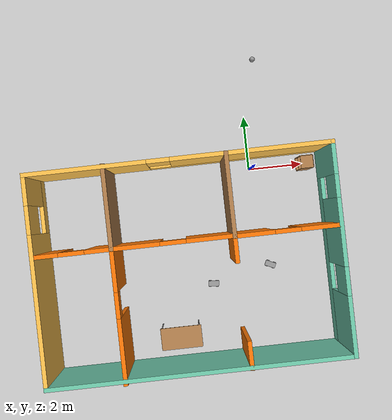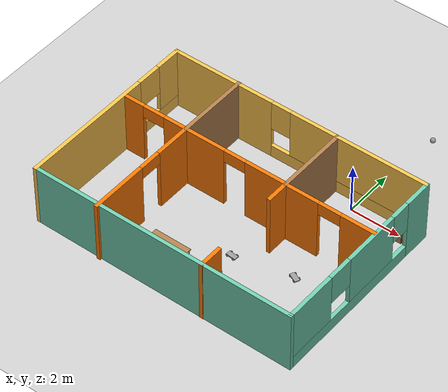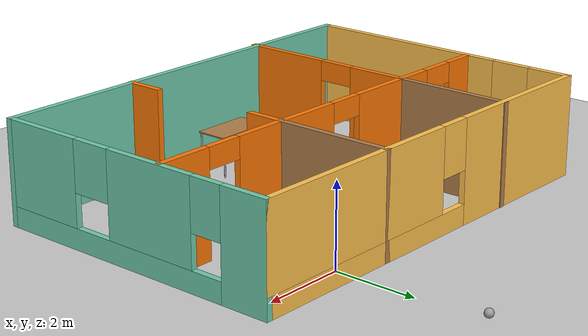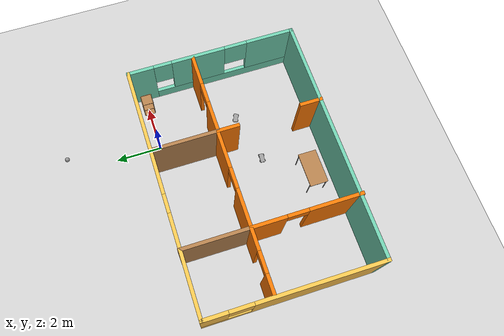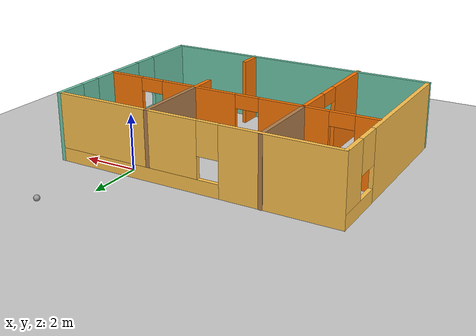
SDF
<sdf version="1.6">
 <world name="default">
  <plugin name="hello" filename="libhello.so"/>
  <light name="sun" type="directional">
   <pose>0 0 10 0 -0 0</pose>
   <diffuse>0.8 0.8 0.8 1</diffuse>
   <specular>0.2 0.2 0.2 1</specular>
   <attenuation>
    <range>1000</range>
    <constant>0.9</constant>
    <linear>0.01</linear>
    <quadratic>0.001</quadratic>
   </attenuation>
   <direction>-0.5 0.1 -0.9</direction>
  </light>
  <model name="ground_plane">
   <static>1</static>
   <link name="link">
    <collision name="collision">
     <geometry><plane><normal>0 0 1</normal><size>100 100</size></plane></geometry>
     <surface>
      <contact><collide_bitmask>65535</collide_bitmask></contact>
      <friction><ode><mu>100</mu><mu2>50</mu2></ode></friction>
     </surface>
    </collision>
    <visual name="visual">
     <cast_shadows>0</cast_shadows>
     <geometry><plane><normal>0 0 1</normal><size>100 100</size></plane></geometry>
     <material>
      <script><uri>file://media/materials/scripts/gazebo.material</uri><name>Gazebo/Grey</name></script>
     </material>
    </visual>
   </link>
  </model>
  <gravity>0 0 -9.8</gravity>
  <magnetic_field>6e-06 2.3e-05 -4.2e-05</magnetic_field>
  <atmosphere type="adiabatic"/>
  <physics name="default_physics" default="0" type="ode">
   <max_step_size>0.001</max_step_size>
   <real_time_factor>1</real_time_factor>
   <real_time_update_rate>1000</real_time_update_rate>
  </physics>
  <scene><ambient>0.4 0.4 0.4 1</ambient><background>0.7 0.7 0.7 1</background><shadows>1</shadows></scene>
  <spherical_coordinates>
   <surface_model>EARTH_WGS84</surface_model>
   <latitude_deg>0</latitude_deg>
   <longitude_deg>0</longitude_deg>
   <elevation>0</elevation>
   <heading_deg>0</heading_deg>
  </spherical_coordinates>
  <model name="mobile_robot">
   <link name="link_0">
    <inertial>
     <mass>1</mass>
     <inertia>
      <ixx>0.166667</ixx>
      <ixy>0</ixy>
      <ixz>0</ixz>
      <iyy>0.166667</iyy>
      <iyz>0</iyz>
      <izz>0.166667</izz>
     </inertia>
    </inertial>
    <visual name="visual">
     <geometry><box><size>0.4 0.2 0.04</size></box></geometry>
     <material>
      <lighting>1</lighting>
      <script><uri>file://media/materials/scripts/gazebo.material</uri><name>Gazebo/Grey</name></script>
      <shader type="pixel"><normal_map>__default__</normal_map></shader>
      <ambient>0.3 0.3 0.3 1</ambient>
      <diffuse>0.7 0.7 0.7 1</diffuse>
      <specular>0.01 0.01 0.01 1</specular>
      <emissive>0 0 0 1</emissive>
     </material>
    </visual>
    <collision name="collision">
     <geometry><box><size>0.4 0.2 0.04</size></box></geometry>
     <surface>
      <friction>
       <ode><mu>1</mu><mu2>1</mu2><fdir1>0 0 0</fdir1><slip1>0</slip1><slip2>0</slip2></ode>
       <torsional>
        <coefficient>1</coefficient>
        <patch_radius>0</patch_radius>
        <surface_radius>0</surface_radius>
        <use_patch_radius>1</use_patch_radius>
        <ode><slip>0</slip></ode>
       </torsional>
      </friction>
      <bounce><restitution_coefficient>0</restitution_coefficient><threshold>1e+06</threshold></bounce>
      <contact>
       <collide_without_contact>0</collide_without_contact>
       <collide_without_contact_bitmask>1</collide_without_contact_bitmask>
       <collide_bitmask>1</collide_bitmask>
       <ode>
        <soft_cfm>0</soft_cfm>
        <soft_erp>0.2</soft_erp>
        <kp>1e+13</kp>
        <kd>1</kd>
        <max_vel>0.01</max_vel>
        <min_depth>0</min_depth>
       </ode>
       <bullet>
        <split_impulse>1</split_impulse>
        <split_impulse_penetration_threshold>-0.01</split_impulse_penetration_threshold>
        <soft_cfm>0</soft_cfm>
        <soft_erp>0.2</soft_erp>
        <kp>1e+13</kp>
        <kd>1</kd>
       </bullet>
      </contact>
     </surface>
    </collision>
   </link>
   <link name="link_1">
    <pose>0.13 0.11 0 1.5707 -0 0</pose>
    <inertial>
     <mass>1</mass>
     <inertia><ixx>0.145833</ixx><ixy>0</ixy><ixz>0</ixz><iyy>0.145833</iyy><iyz>0</iyz><izz>0.125</izz></inertia>
    </inertial>
    <visual name="visual">
     <geometry><cylinder><radius>0.05</radius><length>0.02</length></cylinder></geometry>
     <material>
      <lighting>1</lighting>
      <script><uri>file://media/materials/scripts/gazebo.material</uri><name>Gazebo/Grey</name></script>
      <shader type="pixel"><normal_map>__default__</normal_map></shader>
      <ambient>0.3 0.3 0.3 1</ambient>
      <diffuse>0.7 0.7 0.7 1</diffuse>
      <specular>0.01 0.01 0.01 1</specular>
      <emissive>0 0 0 1</emissive>
     </material>
    </visual>
    <collision name="collision">
     <geometry><cylinder><radius>0.05</radius><length>0.02</length></cylinder></geometry>
     <surface>
      <friction>
       <ode><mu>1</mu><mu2>1</mu2><fdir1>0 0 0</fdir1><slip1>0</slip1><slip2>0</slip2></ode>
       <torsional>
        <coefficient>1</coefficient>
        <patch_radius>0</patch_radius>
        <surface_radius>0</surface_radius>
        <use_patch_radius>1</use_patch_radius>
        <ode><slip>0</slip></ode>
       </torsional>
      </friction>
      <bounce><restitution_coefficient>0</restitution_coefficient><threshold>1e+06</threshold></bounce>
      <contact>
       <collide_without_contact>0</collide_without_contact>
       <collide_without_contact_bitmask>1</collide_without_contact_bitmask>
       <collide_bitmask>1</collide_bitmask>
       <ode>
        <soft_cfm>0</soft_cfm>
        <soft_erp>0.2</soft_erp>
        <kp>1e+13</kp>
        <kd>1</kd>
        <max_vel>0.01</max_vel>
        <min_depth>0</min_depth>
       </ode>
       <bullet>
        <split_impulse>1</split_impulse>
        <split_impulse_penetration_threshold>-0.01</split_impulse_penetration_threshold>
        <soft_cfm>0</soft_cfm>
        <soft_erp>0.2</soft_erp>
        <kp>1e+13</kp>
        <kd>1</kd>
       </bullet>
      </contact>
     </surface>
    </collision>
   </link>
   <link name="link_1_clone">
    <pose>-0.13 0.11 0 1.5707 -0 0</pose>
    <inertial>
     <mass>1</mass>
     <inertia><ixx>0.145833</ixx><ixy>0</ixy><ixz>0</ixz><iyy>0.145833</iyy><iyz>0</iyz><izz>0.125</izz></inertia>
    </inertial>
    <visual name="visual">
     <geometry><cylinder><radius>0.05</radius><length>0.02</length></cylinder></geometry>
     <material>
      <lighting>1</lighting>
      <script><uri>file://media/materials/scripts/gazebo.material</uri><name>Gazebo/Grey</name></script>
      <shader type="pixel"><normal_map>__default__</normal_map></shader>
      <ambient>0.3 0.3 0.3 1</ambient>
      <diffuse>0.7 0.7 0.7 1</diffuse>
      <specular>0.01 0.01 0.01 1</specular>
      <emissive>0 0 0 1</emissive>
     </material>
    </visual>
    <collision name="collision">
     <geometry><cylinder><radius>0.05</radius><length>0.02</length></cylinder></geometry>
     <surface>
      <friction>
       <ode><mu>1</mu><mu2>1</mu2><fdir1>0 0 0</fdir1><slip1>0</slip1><slip2>0</slip2></ode>
       <torsional>
        <coefficient>1</coefficient>
        <patch_radius>0</patch_radius>
        <surface_radius>0</surface_radius>
        <use_patch_radius>1</use_patch_radius>
        <ode><slip>0</slip></ode>
       </torsional>
      </friction>
      <bounce><restitution_coefficient>0</restitution_coefficient><threshold>1e+06</threshold></bounce>
      <contact>
       <collide_without_contact>0</collide_without_contact>
       <collide_without_contact_bitmask>1</collide_without_contact_bitmask>
       <collide_bitmask>1</collide_bitmask>
       <ode>
        <soft_cfm>0</soft_cfm>
        <soft_erp>0.2</soft_erp>
        <kp>1e+13</kp>
        <kd>1</kd>
        <max_vel>0.01</max_vel>
        <min_depth>0</min_depth>
       </ode>
       <bullet>
        <split_impulse>1</split_impulse>
        <split_impulse_penetration_threshold>-0.01</split_impulse_penetration_threshold>
        <soft_cfm>0</soft_cfm>
        <soft_erp>0.2</soft_erp>
        <kp>1e+13</kp>
        <kd>1</kd>
       </bullet>
      </contact>
     </surface>
    </collision>
   </link>
   <link name="link_1_clone_clone">
    <pose>0.13 -0.11 0 1.5707 -0 0</pose>
    <inertial>
     <mass>1</mass>
     <inertia><ixx>0.145833</ixx><ixy>0</ixy><ixz>0</ixz><iyy>0.145833</iyy><iyz>0</iyz><izz>0.125</izz></inertia>
    </inertial>
    <visual name="visual">
     <geometry><cylinder><radius>0.05</radius><length>0.02</length></cylinder></geometry>
     <material>
      <lighting>1</lighting>
      <script><uri>file://media/materials/scripts/gazebo.material</uri><name>Gazebo/Grey</name></script>
      <shader type="pixel"><normal_map>__default__</normal_map></shader>
      <ambient>0.3 0.3 0.3 1</ambient>
      <diffuse>0.7 0.7 0.7 1</diffuse>
      <specular>0.01 0.01 0.01 1</specular>
      <emissive>0 0 0 1</emissive>
     </material>
    </visual>
    <collision name="collision">
     <geometry><cylinder><radius>0.05</radius><length>0.02</length></cylinder></geometry>
     <surface>
      <friction>
       <ode><mu>1</mu><mu2>1</mu2><fdir1>0 0 0</fdir1><slip1>0</slip1><slip2>0</slip2></ode>
       <torsional>
        <coefficient>1</coefficient>
        <patch_radius>0</patch_radius>
        <surface_radius>0</surface_radius>
        <use_patch_radius>1</use_patch_radius>
        <ode><slip>0</slip></ode>
       </torsional>
      </friction>
      <bounce><restitution_coefficient>0</restitution_coefficient><threshold>1e+06</threshold></bounce>
      <contact>
       <collide_without_contact>0</collide_without_contact>
       <collide_without_contact_bitmask>1</collide_without_contact_bitmask>
       <collide_bitmask>1</collide_bitmask>
       <ode>
        <soft_cfm>0</soft_cfm>
        <soft_erp>0.2</soft_erp>
        <kp>1e+13</kp>
        <kd>1</kd>
        <max_vel>0.01</max_vel>
        <min_depth>0</min_depth>
       </ode>
       <bullet>
        <split_impulse>1</split_impulse>
        <split_impulse_penetration_threshold>-0.01</split_impulse_penetration_threshold>
        <soft_cfm>0</soft_cfm>
        <soft_erp>0.2</soft_erp>
        <kp>1e+13</kp>
        <kd>1</kd>
       </bullet>
      </contact>
     </surface>
    </collision>
   </link>
   <link name="link_1_clone_clone_0">
    <pose>-0.13 -0.11 0 1.5705 -0 0</pose>
    <inertial>
     <mass>1</mass>
     <inertia><ixx>0.145833</ixx><ixy>0</ixy><ixz>0</ixz><iyy>0.145833</iyy><iyz>0</iyz><izz>0.125</izz></inertia>
    </inertial>
    <visual name="visual">
     <geometry><cylinder><radius>0.05</radius><length>0.02</length></cylinder></geometry>
     <material>
      <lighting>1</lighting>
      <script><uri>file://media/materials/scripts/gazebo.material</uri><name>Gazebo/Grey</name></script>
      <shader type="pixel"><normal_map>__default__</normal_map></shader>
      <ambient>0.3 0.3 0.3 1</ambient>
      <diffuse>0.7 0.7 0.7 1</diffuse>
      <specular>0.01 0.01 0.01 1</specular>
      <emissive>0 0 0 1</emissive>
     </material>
    </visual>
    <collision name="collision">
     <geometry><cylinder><radius>0.05</radius><length>0.02</length></cylinder></geometry>
     <surface>
      <friction>
       <ode><mu>1</mu><mu2>1</mu2><fdir1>0 0 0</fdir1><slip1>0</slip1><slip2>0</slip2></ode>
       <torsional>
        <coefficient>1</coefficient>
        <patch_radius>0</patch_radius>
        <surface_radius>0</surface_radius>
        <use_patch_radius>1</use_patch_radius>
        <ode><slip>0</slip></ode>
       </torsional>
      </friction>
      <bounce><restitution_coefficient>0</restitution_coefficient><threshold>1e+06</threshold></bounce>
      <contact>
       <collide_without_contact>0</collide_without_contact>
       <collide_without_contact_bitmask>1</collide_without_contact_bitmask>
       <collide_bitmask>1</collide_bitmask>
       <ode>
        <soft_cfm>0</soft_cfm>
        <soft_erp>0.2</soft_erp>
        <kp>1e+13</kp>
        <kd>1</kd>
        <max_vel>0.01</max_vel>
        <min_depth>0</min_depth>
       </ode>
       <bullet>
        <split_impulse>1</split_impulse>
        <split_impulse_penetration_threshold>-0.01</split_impulse_penetration_threshold>
        <soft_cfm>0</soft_cfm>
        <soft_erp>0.2</soft_erp>
        <kp>1e+13</kp>
        <kd>1</kd>
       </bullet>
      </contact>
     </surface>
    </collision>
   </link>
   <joint name="link_0_JOINT_2" type="revolute">
    <parent>link_0</parent>
    <child>link_1</child>
    <axis>
     <xyz>0 0 -1</xyz>
     <use_parent_model_frame>0</use_parent_model_frame>
     <limit>
      <lower>-1.79769e+308</lower>
      <upper>1.79769e+308</upper>
      <effort>-1</effort>
      <velocity>-1</velocity>
     </limit>
     <dynamics>
      <spring_reference>0</spring_reference>
      <spring_stiffness>0</spring_stiffness>
      <damping>0</damping>
     </dynamics>
    </axis>
    <physics>
     <ode><limit><cfm>0</cfm><erp>0.2</erp></limit><suspension><cfm>0</cfm><erp>0.2</erp></suspension></ode>
    </physics>
   </joint>
   <joint name="link_0_JOINT_3" type="revolute">
    <parent>link_0</parent>
    <child>link_1_clone_clone</child>
    <axis>
     <xyz>0 0 1</xyz>
     <use_parent_model_frame>0</use_parent_model_frame>
     <limit>
      <lower>-1.79769e+308</lower>
      <upper>1.79769e+308</upper>
      <effort>-1</effort>
      <velocity>-1</velocity>
     </limit>
     <dynamics>
      <spring_reference>0</spring_reference>
      <spring_stiffness>0</spring_stiffness>
      <damping>0</damping>
     </dynamics>
    </axis>
    <physics>
     <ode><limit><cfm>0</cfm><erp>0.2</erp></limit><suspension><cfm>0</cfm><erp>0.2</erp></suspension></ode>
    </physics>
   </joint>
   <joint name="link_0_JOINT_4" type="revolute">
    <parent>link_0</parent>
    <child>link_1_clone</child>
    <axis>
     <xyz>0 0 1</xyz>
     <use_parent_model_frame>0</use_parent_model_frame>
     <limit>
      <lower>-1.79769e+308</lower>
      <upper>1.79769e+308</upper>
      <effort>-1</effort>
      <velocity>-1</velocity>
     </limit>
     <dynamics>
      <spring_reference>0</spring_reference>
      <spring_stiffness>0</spring_stiffness>
      <damping>0</damping>
     </dynamics>
    </axis>
    <physics>
     <ode><limit><cfm>0</cfm><erp>0.2</erp></limit><suspension><cfm>0</cfm><erp>0.2</erp></suspension></ode>
    </physics>
   </joint>
   <joint name="link_0_JOINT_5" type="revolute">
    <parent>link_0</parent>
    <child>link_1_clone_clone_0</child>
    <axis>
     <xyz>0 0 1</xyz>
     <use_parent_model_frame>0</use_parent_model_frame>
     <limit>
      <lower>-1.79769e+308</lower>
      <upper>1.79769e+308</upper>
      <effort>-1</effort>
      <velocity>-1</velocity>
     </limit>
     <dynamics>
      <spring_reference>0</spring_reference>
      <spring_stiffness>0</spring_stiffness>
      <damping>0</damping>
     </dynamics>
    </axis>
    <physics>
     <ode><limit><cfm>0</cfm><erp>0.2</erp></limit><suspension><cfm>0</cfm><erp>0.2</erp></suspension></ode>
    </physics>
   </joint>
   <static>0</static>
   <pose>0.410534 -3.69803 0.050002 -6e-06 -1e-06 -0.431731</pose>
  </model>
  <model name="my_model">
   <pose>-2.66387 -3.23803 0 0 -0 0</pose>
   <link name="Wall_1">
    <pose>5.3 0.028845 0 0 0 -1.5708</pose>
    <visual name="Wall_1_Visual_0">
     <pose>-3.15577 0 1.25 0 -0 0</pose>
     <geometry><box><size>1.18847 0.15 2.5</size></box></geometry>
     <material>
      <script><uri>file://media/materials/scripts/gazebo.material</uri><name>Gazebo/Grey</name></script>
      <ambient>0.435294 0.796078 0.67451 1</ambient>
     </material>
     <meta><layer>0</layer></meta>
    </visual>
    <collision name="Wall_1_Collision_0">
     <geometry><box><size>1.18847 0.15 2.5</size></box></geometry>
     <pose>-3.15577 0 1.25 0 -0 0</pose>
    </collision>
    <visual name="Wall_1_Visual_1">
     <pose>0.594233 0 0.25 0 -0 0</pose>
     <geometry><box><size>6.31153 0.15 0.5</size></box></geometry>
     <material>
      <script><uri>file://media/materials/scripts/gazebo.material</uri><name>Gazebo/Grey</name></script>
      <ambient>0.435294 0.796078 0.67451 1</ambient>
     </material>
     <meta><layer>0</layer></meta>
    </visual>
    <collision name="Wall_1_Collision_1">
     <geometry><box><size>6.31153 0.15 0.5</size></box></geometry>
     <pose>0.594233 0 0.25 0 -0 0</pose>
    </collision>
    <visual name="Wall_1_Visual_2">
     <pose>-0.574957 0 1.5 0 -0 0</pose>
     <geometry><box><size>2.37316 0.15 2</size></box></geometry>
     <material>
      <script><uri>file://media/materials/scripts/gazebo.material</uri><name>Gazebo/Grey</name></script>
      <ambient>0.435294 0.796078 0.67451 1</ambient>
     </material>
     <meta><layer>0</layer></meta>
    </visual>
    <collision name="Wall_1_Collision_2">
     <geometry><box><size>2.37316 0.15 2</size></box></geometry>
     <pose>-0.574957 0 1.5 0 -0 0</pose>
    </collision>
    <visual name="Wall_1_Visual_3">
     <pose>2.68081 0 1.5 0 -0 0</pose>
     <geometry><box><size>2.13838 0.15 2</size></box></geometry>
     <material>
      <script><uri>file://media/materials/scripts/gazebo.material</uri><name>Gazebo/Grey</name></script>
      <ambient>0.435294 0.796078 0.67451 1</ambient>
     </material>
     <meta><layer>0</layer></meta>
    </visual>
    <collision name="Wall_1_Collision_3">
     <geometry><box><size>2.13838 0.15 2</size></box></geometry>
     <pose>2.68081 0 1.5 0 -0 0</pose>
    </collision>
    <visual name="Wall_1_Visual_4">
     <pose>-2.16153 0 1.9 0 -0 0</pose>
     <geometry><box><size>0.8 0.15 1.2</size></box></geometry>
     <material>
      <script><uri>file://media/materials/scripts/gazebo.material</uri><name>Gazebo/Grey</name></script>
      <ambient>0.435294 0.796078 0.67451 1</ambient>
     </material>
     <meta><layer>0</layer></meta>
    </visual>
    <collision name="Wall_1_Collision_4">
     <geometry><box><size>0.8 0.15 1.2</size></box></geometry>
     <pose>-2.16153 0 1.9 0 -0 0</pose>
    </collision>
    <visual name="Wall_1_Visual_5">
     <pose>1.11162 0 1.9 0 -0 0</pose>
     <geometry><box><size>1 0.15 1.2</size></box></geometry>
     <material>
      <script><uri>file://media/materials/scripts/gazebo.material</uri><name>Gazebo/Grey</name></script>
      <ambient>0.435294 0.796078 0.67451 1</ambient>
     </material>
     <meta><layer>0</layer></meta>
    </visual>
    <collision name="Wall_1_Collision_5">
     <geometry><box><size>1 0.15 1.2</size></box></geometry>
     <pose>1.11162 0 1.9 0 -0 0</pose>
    </collision>
   </link>
   <link name="Wall_12">
    <collision name="Wall_12_Collision">
     <geometry><box><size>3 0.15 2.5</size></box></geometry>
     <pose>0 0 1.25 0 -0 0</pose>
    </collision>
    <visual name="Wall_12_Visual">
     <pose>0 0 1.25 0 -0 0</pose>
     <geometry><box><size>3 0.15 2.5</size></box></geometry>
     <material>
      <script><uri>file://media/materials/scripts/gazebo.material</uri><name>Gazebo/Wood</name></script>
      <ambient>1 1 1 1</ambient>
     </material>
     <meta><layer>0</layer></meta>
    </visual>
    <pose>1.65 2.27885 0 0 -0 1.5708</pose>
   </link>
   <link name="Wall_14">
    <pose>3.45 0.853845 0 0 -0 0</pose>
    <visual name="Wall_14_Visual_0">
     <pose>-1.14946 0 1.25 0 -0 0</pose>
     <geometry><box><size>1.45107 0.15 2.5</size></box></geometry>
     <material>
      <script><uri>file://media/materials/scripts/gazebo.material</uri><name>Gazebo/Grey</name></script>
      <ambient>0.996078 0.47451 0.0196078 1</ambient>
     </material>
     <meta><layer>0</layer></meta>
    </visual>
    <collision name="Wall_14_Collision_0">
     <geometry><box><size>1.45107 0.15 2.5</size></box></geometry>
     <pose>-1.14946 0 1.25 0 -0 0</pose>
    </collision>
    <visual name="Wall_14_Visual_1">
     <pose>1.17554 0 1.25 0 -0 0</pose>
     <geometry><box><size>1.39893 0.15 2.5</size></box></geometry>
     <material>
      <script><uri>file://media/materials/scripts/gazebo.material</uri><name>Gazebo/Grey</name></script>
      <ambient>0.996078 0.47451 0.0196078 1</ambient>
     </material>
     <meta><layer>0</layer></meta>
    </visual>
    <collision name="Wall_14_Collision_1">
     <geometry><box><size>1.39893 0.15 2.5</size></box></geometry>
     <pose>1.17554 0 1.25 0 -0 0</pose>
    </collision>
    <visual name="Wall_14_Visual_2">
     <pose>0.026073 0 2.25 0 -0 0</pose>
     <geometry><box><size>0.9 0.15 0.5</size></box></geometry>
     <material>
      <script><uri>file://media/materials/scripts/gazebo.material</uri><name>Gazebo/Grey</name></script>
      <ambient>0.996078 0.47451 0.0196078 1</ambient>
     </material>
     <meta><layer>0</layer></meta>
    </visual>
    <collision name="Wall_14_Collision_2">
     <geometry><box><size>0.9 0.15 0.5</size></box></geometry>
     <pose>0.026073 0 2.25 0 -0 0</pose>
    </collision>
   </link>
   <link name="Wall_2">
    <collision name="Wall_2_Collision">
     <geometry><box><size>10.75 0.15 2.5</size></box></geometry>
     <pose>0 0 1.25 0 -0 0</pose>
    </collision>
    <visual name="Wall_2_Visual">
     <pose>0 0 1.25 0 -0 0</pose>
     <geometry><box><size>10.75 0.15 2.5</size></box></geometry>
     <material>
      <script><uri>file://media/materials/scripts/gazebo.material</uri><name>Gazebo/Grey</name></script>
      <ambient>0.435294 0.796078 0.67451 1</ambient>
     </material>
     <meta><layer>0</layer></meta>
    </visual>
    <pose>0 -3.64615 0 0 -0 3.14159</pose>
   </link>
   <link name="Wall_20">
    <collision name="Wall_20_Collision">
     <geometry><box><size>1 0.15 2.5</size></box></geometry>
     <pose>0 0 1.25 0 -0 0</pose>
    </collision>
    <visual name="Wall_20_Visual">
     <pose>0 0 1.25 0 -0 0</pose>
     <geometry><box><size>1 0.15 2.5</size></box></geometry>
     <material>
      <script><uri>file://media/materials/scripts/gazebo.material</uri><name>Gazebo/Grey</name></script>
      <ambient>0.996078 0.47451 0.0196078 1</ambient>
     </material>
     <meta><layer>0</layer></meta>
    </visual>
    <pose>1.65 0.428846 0 0 0 -1.5708</pose>
   </link>
   <link name="Wall_22">
    <collision name="Wall_22_Collision">
     <geometry><box><size>1 0.15 2.5</size></box></geometry>
     <pose>0 0 1.25 0 -0 0</pose>
    </collision>
    <visual name="Wall_22_Visual">
     <pose>0 0 1.25 0 -0 0</pose>
     <geometry><box><size>1 0.15 2.5</size></box></geometry>
     <material>
      <script><uri>file://media/materials/scripts/gazebo.material</uri><name>Gazebo/Grey</name></script>
      <ambient>0.996078 0.47451 0.0196078 1</ambient>
     </material>
     <meta><layer>0</layer></meta>
    </visual>
    <pose>1.75018 -3.23734 0 0 -0 1.5708</pose>
   </link>
   <link name="Wall_24">
    <pose>-5.3 0.028845 0 0 -0 1.5708</pose>
    <visual name="Wall_24_Visual_0">
     <pose>-1.05953 0 1.25 0 -0 0</pose>
     <geometry><box><size>5.38094 0.15 2.5</size></box></geometry>
     <material>
      <script><uri>file://media/materials/scripts/gazebo.material</uri><name>Gazebo/Grey</name></script>
      <ambient>1 0.764706 0.305882 1</ambient>
     </material>
     <meta><layer>0</layer></meta>
    </visual>
    <collision name="Wall_24_Collision_0">
     <geometry><box><size>5.38094 0.15 2.5</size></box></geometry>
     <pose>-1.05953 0 1.25 0 -0 0</pose>
    </collision>
    <visual name="Wall_24_Visual_1">
     <pose>2.69047 0 0.25 0 -0 0</pose>
     <geometry><box><size>2.11906 0.15 0.5</size></box></geometry>
     <material>
      <script><uri>file://media/materials/scripts/gazebo.material</uri><name>Gazebo/Grey</name></script>
      <ambient>1 0.764706 0.305882 1</ambient>
     </material>
     <meta><layer>0</layer></meta>
    </visual>
    <collision name="Wall_24_Collision_1">
     <geometry><box><size>2.11906 0.15 0.5</size></box></geometry>
     <pose>2.69047 0 0.25 0 -0 0</pose>
    </collision>
    <visual name="Wall_24_Visual_2">
     <pose>3.19047 0 1.5 0 -0 0</pose>
     <geometry><box><size>1.11906 0.15 2</size></box></geometry>
     <material>
      <script><uri>file://media/materials/scripts/gazebo.material</uri><name>Gazebo/Grey</name></script>
      <ambient>1 0.764706 0.305882 1</ambient>
     </material>
     <meta><layer>0</layer></meta>
    </visual>
    <collision name="Wall_24_Collision_2">
     <geometry><box><size>1.11906 0.15 2</size></box></geometry>
     <pose>3.19047 0 1.5 0 -0 0</pose>
    </collision>
    <visual name="Wall_24_Visual_3">
     <pose>2.13094 0 1.9 0 -0 0</pose>
     <geometry><box><size>1 0.15 1.2</size></box></geometry>
     <material>
      <script><uri>file://media/materials/scripts/gazebo.material</uri><name>Gazebo/Grey</name></script>
      <ambient>1 0.764706 0.305882 1</ambient>
     </material>
     <meta><layer>0</layer></meta>
    </visual>
    <collision name="Wall_24_Collision_3">
     <geometry><box><size>1 0.15 1.2</size></box></geometry>
     <pose>2.13094 0 1.9 0 -0 0</pose>
    </collision>
   </link>
   <link name="Wall_25">
    <pose>0 3.70385 0 0 -0 0</pose>
    <visual name="Wall_25_Visual_0">
     <pose>-3.2296 0 1.25 0 -0 0</pose>
     <geometry><box><size>4.2908 0.15 2.5</size></box></geometry>
     <material>
      <script><uri>file://media/materials/scripts/gazebo.material</uri><name>Gazebo/Grey</name></script>
      <ambient>1 0.764706 0.305882 1</ambient>
     </material>
     <meta><layer>0</layer></meta>
    </visual>
    <collision name="Wall_25_Collision_0">
     <geometry><box><size>4.2908 0.15 2.5</size></box></geometry>
     <pose>-3.2296 0 1.25 0 -0 0</pose>
    </collision>
    <visual name="Wall_25_Visual_1">
     <pose>2.1454 0 0.25 0 -0 0</pose>
     <geometry><box><size>6.4592 0.15 0.5</size></box></geometry>
     <material>
      <script><uri>file://media/materials/scripts/gazebo.material</uri><name>Gazebo/Grey</name></script>
      <ambient>1 0.764706 0.305882 1</ambient>
     </material>
     <meta><layer>0</layer></meta>
    </visual>
    <collision name="Wall_25_Collision_1">
     <geometry><box><size>6.4592 0.15 0.5</size></box></geometry>
     <pose>2.1454 0 0.25 0 -0 0</pose>
    </collision>
    <visual name="Wall_25_Visual_2">
     <pose>2.5454 0 1.5 0 -0 0</pose>
     <geometry><box><size>5.6592 0.15 2</size></box></geometry>
     <material>
      <script><uri>file://media/materials/scripts/gazebo.material</uri><name>Gazebo/Grey</name></script>
      <ambient>1 0.764706 0.305882 1</ambient>
     </material>
     <meta><layer>0</layer></meta>
    </visual>
    <collision name="Wall_25_Collision_2">
     <geometry><box><size>5.6592 0.15 2</size></box></geometry>
     <pose>2.5454 0 1.5 0 -0 0</pose>
    </collision>
    <visual name="Wall_25_Visual_3">
     <pose>-0.684198 0 1.9 0 -0 0</pose>
     <geometry><box><size>0.8 0.15 1.2</size></box></geometry>
     <material>
      <script><uri>file://media/materials/scripts/gazebo.material</uri><name>Gazebo/Grey</name></script>
      <ambient>1 0.764706 0.305882 1</ambient>
     </material>
     <meta><layer>0</layer></meta>
    </visual>
    <collision name="Wall_25_Collision_3">
     <geometry><box><size>0.8 0.15 1.2</size></box></geometry>
     <pose>-0.684198 0 1.9 0 -0 0</pose>
    </collision>
   </link>
   <link name="Wall_27">
    <pose>-3.88096 0.875 0 0 -0 0</pose>
    <visual name="Wall_27_Visual_0">
     <pose>-0.950695 0 1.25 0 -0 0</pose>
     <geometry><box><size>0.848609 0.15 2.5</size></box></geometry>
     <material>
      <script><uri>file://media/materials/scripts/gazebo.material</uri><name>Gazebo/Grey</name></script>
      <ambient>0.996078 0.47451 0.0196078 1</ambient>
     </material>
     <meta><layer>0</layer></meta>
    </visual>
    <collision name="Wall_27_Collision_0">
     <geometry><box><size>0.848609 0.15 2.5</size></box></geometry>
     <pose>-0.950695 0 1.25 0 -0 0</pose>
    </collision>
    <visual name="Wall_27_Visual_1">
     <pose>0.874305 0 1.25 0 -0 0</pose>
     <geometry><box><size>1.00139 0.15 2.5</size></box></geometry>
     <material>
      <script><uri>file://media/materials/scripts/gazebo.material</uri><name>Gazebo/Grey</name></script>
      <ambient>0.996078 0.47451 0.0196078 1</ambient>
     </material>
     <meta><layer>0</layer></meta>
    </visual>
    <collision name="Wall_27_Collision_1">
     <geometry><box><size>1.00139 0.15 2.5</size></box></geometry>
     <pose>0.874305 0 1.25 0 -0 0</pose>
    </collision>
    <visual name="Wall_27_Visual_2">
     <pose>-0.076391 0 2.25 0 -0 0</pose>
     <geometry><box><size>0.9 0.15 0.5</size></box></geometry>
     <material>
      <script><uri>file://media/materials/scripts/gazebo.material</uri><name>Gazebo/Grey</name></script>
      <ambient>0.996078 0.47451 0.0196078 1</ambient>
     </material>
     <meta><layer>0</layer></meta>
    </visual>
    <collision name="Wall_27_Collision_2">
     <geometry><box><size>0.9 0.15 0.5</size></box></geometry>
     <pose>-0.076391 0 2.25 0 -0 0</pose>
    </collision>
   </link>
   <link name="Wall_28">
    <collision name="Wall_28_Collision">
     <geometry><box><size>3 0.15 2.5</size></box></geometry>
     <pose>0 0 1.25 0 -0 0</pose>
    </collision>
    <visual name="Wall_28_Visual">
     <pose>0 0 1.25 0 -0 0</pose>
     <geometry><box><size>3 0.15 2.5</size></box></geometry>
     <material>
      <script><uri>file://media/materials/scripts/gazebo.material</uri><name>Gazebo/Wood</name></script>
      <ambient>1 1 1 1</ambient>
     </material>
     <meta><layer>0</layer></meta>
    </visual>
    <pose>-2.58096 2.3 0 0 -0 1.5708</pose>
   </link>
   <link name="Wall_30">
    <pose>-0.530961 0.875 0 0 -0 0</pose>
    <visual name="Wall_30_Visual_0">
     <pose>-1.25705 0 1.25 0 -0 0</pose>
     <geometry><box><size>1.73589 0.15 2.5</size></box></geometry>
     <material>
      <script><uri>file://media/materials/scripts/gazebo.material</uri><name>Gazebo/Grey</name></script>
      <ambient>0.996078 0.47451 0.0196078 1</ambient>
     </material>
     <meta><layer>0</layer></meta>
    </visual>
    <collision name="Wall_30_Collision_0">
     <geometry><box><size>1.73589 0.15 2.5</size></box></geometry>
     <pose>-1.25705 0 1.25 0 -0 0</pose>
    </collision>
    <visual name="Wall_30_Visual_1">
     <pose>1.31795 0 1.25 0 -0 0</pose>
     <geometry><box><size>1.6141 0.15 2.5</size></box></geometry>
     <material>
      <script><uri>file://media/materials/scripts/gazebo.material</uri><name>Gazebo/Grey</name></script>
      <ambient>0.996078 0.47451 0.0196078 1</ambient>
     </material>
     <meta><layer>0</layer></meta>
    </visual>
    <collision name="Wall_30_Collision_1">
     <geometry><box><size>1.6141 0.15 2.5</size></box></geometry>
     <pose>1.31795 0 1.25 0 -0 0</pose>
    </collision>
    <visual name="Wall_30_Visual_2">
     <pose>0.060895 0 2.25 0 -0 0</pose>
     <geometry><box><size>0.9 0.15 0.5</size></box></geometry>
     <material>
      <script><uri>file://media/materials/scripts/gazebo.material</uri><name>Gazebo/Grey</name></script>
      <ambient>0.996078 0.47451 0.0196078 1</ambient>
     </material>
     <meta><layer>0</layer></meta>
    </visual>
    <collision name="Wall_30_Collision_2">
     <geometry><box><size>0.9 0.15 0.5</size></box></geometry>
     <pose>0.060895 0 2.25 0 -0 0</pose>
    </collision>
   </link>
   <link name="Wall_32">
    <pose>-2.58096 -1.425 0 0 0 -1.5708</pose>
    <visual name="Wall_32_Visual_0">
     <pose>-1.59891 0 1.25 0 -0 0</pose>
     <geometry><box><size>1.55218 0.15 2.5</size></box></geometry>
     <material>
      <script><uri>file://media/materials/scripts/gazebo.material</uri><name>Gazebo/Grey</name></script>
      <ambient>0.996078 0.47451 0.0196078 1</ambient>
     </material>
     <meta><layer>0</layer></meta>
    </visual>
    <collision name="Wall_32_Collision_0">
     <geometry><box><size>1.55218 0.15 2.5</size></box></geometry>
     <pose>-1.59891 0 1.25 0 -0 0</pose>
    </collision>
    <visual name="Wall_32_Visual_1">
     <pose>1.22609 0 1.25 0 -0 0</pose>
     <geometry><box><size>2.29782 0.15 2.5</size></box></geometry>
     <material>
      <script><uri>file://media/materials/scripts/gazebo.material</uri><name>Gazebo/Grey</name></script>
      <ambient>0.996078 0.47451 0.0196078 1</ambient>
     </material>
     <meta><layer>0</layer></meta>
    </visual>
    <collision name="Wall_32_Collision_1">
     <geometry><box><size>2.29782 0.15 2.5</size></box></geometry>
     <pose>1.22609 0 1.25 0 -0 0</pose>
    </collision>
    <visual name="Wall_32_Visual_2">
     <pose>-0.372816 0 2.25 0 -0 0</pose>
     <geometry><box><size>0.9 0.15 0.5</size></box></geometry>
     <material>
      <script><uri>file://media/materials/scripts/gazebo.material</uri><name>Gazebo/Grey</name></script>
      <ambient>0.996078 0.47451 0.0196078 1</ambient>
     </material>
     <meta><layer>0</layer></meta>
    </visual>
    <collision name="Wall_32_Collision_2">
     <geometry><box><size>0.9 0.15 0.5</size></box></geometry>
     <pose>-0.372816 0 2.25 0 -0 0</pose>
    </collision>
   </link>
   <static>1</static>
  </model>
  <model name="table">
   <static>1</static>
   <link name="link">
    <collision name="surface">
     <pose>0 0 1 0 -0 0</pose>
     <geometry><box><size>1.5 0.8 0.03</size></box></geometry>
     <surface><friction><ode><mu>0.6</mu><mu2>0.6</mu2></ode></friction></surface>
    </collision>
    <visual name="visual1">
     <pose>0 0 1 0 -0 0</pose>
     <geometry><box><size>1.5 0.8 0.03</size></box></geometry>
     <material>
      <script><uri>file://media/materials/scripts/gazebo.material</uri><name>Gazebo/Wood</name></script>
     </material>
    </visual>
    <collision name="front_left_leg">
     <pose>0.68 0.38 0.5 0 -0 0</pose>
     <geometry><cylinder><radius>0.02</radius><length>1</length></cylinder></geometry>
    </collision>
    <visual name="front_left_leg">
     <pose>0.68 0.38 0.5 0 -0 0</pose>
     <geometry><cylinder><radius>0.02</radius><length>1</length></cylinder></geometry>
     <material>
      <script><uri>file://media/materials/scripts/gazebo.material</uri><name>Gazebo/Grey</name></script>
     </material>
    </visual>
    <collision name="front_right_leg">
     <pose>0.68 -0.38 0.5 0 -0 0</pose>
     <geometry><cylinder><radius>0.02</radius><length>1</length></cylinder></geometry>
    </collision>
    <visual name="front_right_leg">
     <pose>0.68 -0.38 0.5 0 -0 0</pose>
     <geometry><cylinder><radius>0.02</radius><length>1</length></cylinder></geometry>
     <material>
      <script><uri>file://media/materials/scripts/gazebo.material</uri><name>Gazebo/Grey</name></script>
     </material>
    </visual>
    <collision name="back_right_leg">
     <pose>-0.68 -0.38 0.5 0 -0 0</pose>
     <geometry><cylinder><radius>0.02</radius><length>1</length></cylinder></geometry>
    </collision>
    <visual name="back_right_leg">
     <pose>-0.68 -0.38 0.5 0 -0 0</pose>
     <geometry><cylinder><radius>0.02</radius><length>1</length></cylinder></geometry>
     <material>
      <script><uri>file://media/materials/scripts/gazebo.material</uri><name>Gazebo/Grey</name></script>
     </material>
    </visual>
    <collision name="back_left_leg">
     <pose>-0.68 0.38 0.5 0 -0 0</pose>
     <geometry><cylinder><radius>0.02</radius><length>1</length></cylinder></geometry>
    </collision>
    <visual name="back_left_leg">
     <pose>-0.68 0.38 0.5 0 -0 0</pose>
     <geometry><cylinder><radius>0.02</radius><length>1</length></cylinder></geometry>
     <material>
      <script><uri>file://media/materials/scripts/gazebo.material</uri><name>Gazebo/Grey</name></script>
     </material>
    </visual>
   </link>
   <pose>-3.24276 -5.92697 0 0 -0 0</pose>
  </model>
  <model name="cabinet">
   <static>1</static>
   <link name="cabinet_bottom_plate">
    <inertial>
     <pose>0 0 -1 0 -0 0</pose>
     <inertia><ixx>2.05</ixx><ixy>0</ixy><ixz>0</ixz><iyy>2.05</iyy><iyz>0</iyz><izz>2.05</izz></inertia>
     <mass>25</mass>
    </inertial>
    <collision name="cabinet_bottom_plate_geom">
     <pose>0 0 0.01 0 -0 0</pose>
     <geometry><box><size>0.45 0.45 0.02</size></box></geometry>
    </collision>
    <visual name="cabinet_bottom_plate_geom_visual">
     <pose>0 0 0.01 0 -0 0</pose>
     <geometry><box><size>0.45 0.45 0.02</size></box></geometry>
     <material>
      <script><uri>file://media/materials/scripts/gazebo.material</uri><name>Gazebo/Wood</name></script>
     </material>
    </visual>
    <collision name="cabinet_bottom_plate_geom_cabinet_back_plate">
     <pose>0.235 0 0.51 0 -0 0</pose>
     <geometry><box><size>0.02 0.45 1.02</size></box></geometry>
    </collision>
    <visual name="cabinet_bottom_plate_geom_cabinet_back_plate_visual">
     <pose>0.235 0 0.51 0 -0 0</pose>
     <geometry><box><size>0.02 0.45 1.02</size></box></geometry>
     <material>
      <script><uri>file://media/materials/scripts/gazebo.material</uri><name>Gazebo/Wood</name></script>
     </material>
    </visual>
    <collision name="cabinet_bottom_plate_geom_cabinet_left_plate">
     <pose>0 0.235 0.51 0 -0 0</pose>
     <geometry><box><size>0.45 0.02 1.02</size></box></geometry>
    </collision>
    <visual name="cabinet_bottom_plate_geom_cabinet_left_plate_visual">
     <pose>0 0.235 0.51 0 -0 0</pose>
     <geometry><box><size>0.45 0.02 1.02</size></box></geometry>
     <material>
      <script><uri>file://media/materials/scripts/gazebo.material</uri><name>Gazebo/Wood</name></script>
     </material>
    </visual>
    <collision name="cabinet_bottom_plate_geom_cabinet_middle_plate">
     <pose>0 0 0.51 0 -0 0</pose>
     <geometry><box><size>0.45 0.45 0.02</size></box></geometry>
    </collision>
    <visual name="cabinet_bottom_plate_geom_cabinet_middle_plate_visual">
     <pose>0 0 0.51 0 -0 0</pose>
     <geometry><box><size>0.45 0.45 0.02</size></box></geometry>
     <material>
      <script><uri>file://media/materials/scripts/gazebo.material</uri><name>Gazebo/Wood</name></script>
     </material>
    </visual>
    <collision name="cabinet_bottom_plate_geom_cabinet_right_plate">
     <pose>0 -0.235 0.51 0 -0 0</pose>
     <geometry><box><size>0.45 0.02 1.02</size></box></geometry>
    </collision>
    <visual name="cabinet_bottom_plate_geom_cabinet_right_plate_visual">
     <pose>0 -0.235 0.51 0 -0 0</pose>
     <geometry><box><size>0.45 0.02 1.02</size></box></geometry>
     <material>
      <script><uri>file://media/materials/scripts/gazebo.material</uri><name>Gazebo/Wood</name></script>
     </material>
    </visual>
    <collision name="cabinet_bottom_plate_geom_cabinet_top_plate">
     <pose>0 0 1.01 0 -0 0</pose>
     <geometry><box><size>0.45 0.45 0.02</size></box></geometry>
    </collision>
    <visual name="cabinet_bottom_plate_geom_cabinet_top_plate_visual">
     <pose>0 0 1.01 0 -0 0</pose>
     <geometry><box><size>0.45 0.45 0.02</size></box></geometry>
     <material>
      <script><uri>file://media/materials/scripts/gazebo.material</uri><name>Gazebo/Wood</name></script>
     </material>
    </visual>
   </link>
   <pose>2.01534 -0.013659 0 0 -0 0</pose>
  </model>
  <model name="mobile_robot_clone">
   <link name="link_0">
    <inertial>
     <mass>1</mass>
     <inertia>
      <ixx>0.166667</ixx>
      <ixy>0</ixy>
      <ixz>0</ixz>
      <iyy>0.166667</iyy>
      <iyz>0</iyz>
      <izz>0.166667</izz>
     </inertia>
    </inertial>
    <visual name="visual">
     <geometry><box><size>0.4 0.2 0.04</size></box></geometry>
     <material>
      <lighting>1</lighting>
      <script><uri>file://media/materials/scripts/gazebo.material</uri><name>Gazebo/Grey</name></script>
      <shader type="pixel"><normal_map>__default__</normal_map></shader>
      <ambient>0.3 0.3 0.3 1</ambient>
      <diffuse>0.7 0.7 0.7 1</diffuse>
      <specular>0.01 0.01 0.01 1</specular>
      <emissive>0 0 0 1</emissive>
     </material>
    </visual>
    <collision name="collision">
     <geometry><box><size>0.4 0.2 0.04</size></box></geometry>
     <surface>
      <friction>
       <ode><mu>1</mu><mu2>1</mu2><fdir1>0 0 0</fdir1><slip1>0</slip1><slip2>0</slip2></ode>
       <torsional>
        <coefficient>1</coefficient>
        <patch_radius>0</patch_radius>
        <surface_radius>0</surface_radius>
        <use_patch_radius>1</use_patch_radius>
        <ode><slip>0</slip></ode>
       </torsional>
      </friction>
      <bounce><restitution_coefficient>0</restitution_coefficient><threshold>1e+06</threshold></bounce>
      <contact>
       <collide_without_contact>0</collide_without_contact>
       <collide_without_contact_bitmask>1</collide_without_contact_bitmask>
       <collide_bitmask>1</collide_bitmask>
       <ode>
        <soft_cfm>0</soft_cfm>
        <soft_erp>0.2</soft_erp>
        <kp>1e+13</kp>
        <kd>1</kd>
        <max_vel>0.01</max_vel>
        <min_depth>0</min_depth>
       </ode>
       <bullet>
        <split_impulse>1</split_impulse>
        <split_impulse_penetration_threshold>-0.01</split_impulse_penetration_threshold>
        <soft_cfm>0</soft_cfm>
        <soft_erp>0.2</soft_erp>
        <kp>1e+13</kp>
        <kd>1</kd>
       </bullet>
      </contact>
     </surface>
    </collision>
   </link>
   <link name="link_1">
    <pose>0.13 0.11 0 1.5707 -0 0</pose>
    <inertial>
     <mass>1</mass>
     <inertia><ixx>0.145833</ixx><ixy>0</ixy><ixz>0</ixz><iyy>0.145833</iyy><iyz>0</iyz><izz>0.125</izz></inertia>
    </inertial>
    <visual name="visual">
     <geometry><cylinder><radius>0.05</radius><length>0.02</length></cylinder></geometry>
     <material>
      <lighting>1</lighting>
      <script><uri>file://media/materials/scripts/gazebo.material</uri><name>Gazebo/Grey</name></script>
      <shader type="pixel"><normal_map>__default__</normal_map></shader>
      <ambient>0.3 0.3 0.3 1</ambient>
      <diffuse>0.7 0.7 0.7 1</diffuse>
      <specular>0.01 0.01 0.01 1</specular>
      <emissive>0 0 0 1</emissive>
     </material>
    </visual>
    <collision name="collision">
     <geometry><cylinder><radius>0.05</radius><length>0.02</length></cylinder></geometry>
     <surface>
      <friction>
       <ode><mu>1</mu><mu2>1</mu2><fdir1>0 0 0</fdir1><slip1>0</slip1><slip2>0</slip2></ode>
       <torsional>
        <coefficient>1</coefficient>
        <patch_radius>0</patch_radius>
        <surface_radius>0</surface_radius>
        <use_patch_radius>1</use_patch_radius>
        <ode><slip>0</slip></ode>
       </torsional>
      </friction>
      <bounce><restitution_coefficient>0</restitution_coefficient><threshold>1e+06</threshold></bounce>
      <contact>
       <collide_without_contact>0</collide_without_contact>
       <collide_without_contact_bitmask>1</collide_without_contact_bitmask>
       <collide_bitmask>1</collide_bitmask>
       <ode>
        <soft_cfm>0</soft_cfm>
        <soft_erp>0.2</soft_erp>
        <kp>1e+13</kp>
        <kd>1</kd>
        <max_vel>0.01</max_vel>
        <min_depth>0</min_depth>
       </ode>
       <bullet>
        <split_impulse>1</split_impulse>
        <split_impulse_penetration_threshold>-0.01</split_impulse_penetration_threshold>
        <soft_cfm>0</soft_cfm>
        <soft_erp>0.2</soft_erp>
        <kp>1e+13</kp>
        <kd>1</kd>
       </bullet>
      </contact>
     </surface>
    </collision>
   </link>
   <link name="link_1_clone">
    <pose>-0.13 0.11 0 1.5707 -0 0</pose>
    <inertial>
     <mass>1</mass>
     <inertia><ixx>0.145833</ixx><ixy>0</ixy><ixz>0</ixz><iyy>0.145833</iyy><iyz>0</iyz><izz>0.125</izz></inertia>
    </inertial>
    <visual name="visual">
     <geometry><cylinder><radius>0.05</radius><length>0.02</length></cylinder></geometry>
     <material>
      <lighting>1</lighting>
      <script><uri>file://media/materials/scripts/gazebo.material</uri><name>Gazebo/Grey</name></script>
      <shader type="pixel"><normal_map>__default__</normal_map></shader>
      <ambient>0.3 0.3 0.3 1</ambient>
      <diffuse>0.7 0.7 0.7 1</diffuse>
      <specular>0.01 0.01 0.01 1</specular>
      <emissive>0 0 0 1</emissive>
     </material>
    </visual>
    <collision name="collision">
     <geometry><cylinder><radius>0.05</radius><length>0.02</length></cylinder></geometry>
     <surface>
      <friction>
       <ode><mu>1</mu><mu2>1</mu2><fdir1>0 0 0</fdir1><slip1>0</slip1><slip2>0</slip2></ode>
       <torsional>
        <coefficient>1</coefficient>
        <patch_radius>0</patch_radius>
        <surface_radius>0</surface_radius>
        <use_patch_radius>1</use_patch_radius>
        <ode><slip>0</slip></ode>
       </torsional>
      </friction>
      <bounce><restitution_coefficient>0</restitution_coefficient><threshold>1e+06</threshold></bounce>
      <contact>
       <collide_without_contact>0</collide_without_contact>
       <collide_without_contact_bitmask>1</collide_without_contact_bitmask>
       <collide_bitmask>1</collide_bitmask>
       <ode>
        <soft_cfm>0</soft_cfm>
        <soft_erp>0.2</soft_erp>
        <kp>1e+13</kp>
        <kd>1</kd>
        <max_vel>0.01</max_vel>
        <min_depth>0</min_depth>
       </ode>
       <bullet>
        <split_impulse>1</split_impulse>
        <split_impulse_penetration_threshold>-0.01</split_impulse_penetration_threshold>
        <soft_cfm>0</soft_cfm>
        <soft_erp>0.2</soft_erp>
        <kp>1e+13</kp>
        <kd>1</kd>
       </bullet>
      </contact>
     </surface>
    </collision>
   </link>
   <link name="link_1_clone_clone">
    <pose>0.13 -0.11 0 1.5707 -0 0</pose>
    <inertial>
     <mass>1</mass>
     <inertia><ixx>0.145833</ixx><ixy>0</ixy><ixz>0</ixz><iyy>0.145833</iyy><iyz>0</iyz><izz>0.125</izz></inertia>
    </inertial>
    <visual name="visual">
     <geometry><cylinder><radius>0.05</radius><length>0.02</length></cylinder></geometry>
     <material>
      <lighting>1</lighting>
      <script><uri>file://media/materials/scripts/gazebo.material</uri><name>Gazebo/Grey</name></script>
      <shader type="pixel"><normal_map>__default__</normal_map></shader>
      <ambient>0.3 0.3 0.3 1</ambient>
      <diffuse>0.7 0.7 0.7 1</diffuse>
      <specular>0.01 0.01 0.01 1</specular>
      <emissive>0 0 0 1</emissive>
     </material>
    </visual>
    <collision name="collision">
     <geometry><cylinder><radius>0.05</radius><length>0.02</length></cylinder></geometry>
     <surface>
      <friction>
       <ode><mu>1</mu><mu2>1</mu2><fdir1>0 0 0</fdir1><slip1>0</slip1><slip2>0</slip2></ode>
       <torsional>
        <coefficient>1</coefficient>
        <patch_radius>0</patch_radius>
        <surface_radius>0</surface_radius>
        <use_patch_radius>1</use_patch_radius>
        <ode><slip>0</slip></ode>
       </torsional>
      </friction>
      <bounce><restitution_coefficient>0</restitution_coefficient><threshold>1e+06</threshold></bounce>
      <contact>
       <collide_without_contact>0</collide_without_contact>
       <collide_without_contact_bitmask>1</collide_without_contact_bitmask>
       <collide_bitmask>1</collide_bitmask>
       <ode>
        <soft_cfm>0</soft_cfm>
        <soft_erp>0.2</soft_erp>
        <kp>1e+13</kp>
        <kd>1</kd>
        <max_vel>0.01</max_vel>
        <min_depth>0</min_depth>
       </ode>
       <bullet>
        <split_impulse>1</split_impulse>
        <split_impulse_penetration_threshold>-0.01</split_impulse_penetration_threshold>
        <soft_cfm>0</soft_cfm>
        <soft_erp>0.2</soft_erp>
        <kp>1e+13</kp>
        <kd>1</kd>
       </bullet>
      </contact>
     </surface>
    </collision>
   </link>
   <link name="link_1_clone_clone_0">
    <pose>-0.13 -0.11 0 1.5705 -0 0</pose>
    <inertial>
     <mass>1</mass>
     <inertia><ixx>0.145833</ixx><ixy>0</ixy><ixz>0</ixz><iyy>0.145833</iyy><iyz>0</iyz><izz>0.125</izz></inertia>
    </inertial>
    <visual name="visual">
     <geometry><cylinder><radius>0.05</radius><length>0.02</length></cylinder></geometry>
     <material>
      <lighting>1</lighting>
      <script><uri>file://media/materials/scripts/gazebo.material</uri><name>Gazebo/Grey</name></script>
      <shader type="pixel"><normal_map>__default__</normal_map></shader>
      <ambient>0.3 0.3 0.3 1</ambient>
      <diffuse>0.7 0.7 0.7 1</diffuse>
      <specular>0.01 0.01 0.01 1</specular>
      <emissive>0 0 0 1</emissive>
     </material>
    </visual>
    <collision name="collision">
     <geometry><cylinder><radius>0.05</radius><length>0.02</length></cylinder></geometry>
     <surface>
      <friction>
       <ode><mu>1</mu><mu2>1</mu2><fdir1>0 0 0</fdir1><slip1>0</slip1><slip2>0</slip2></ode>
       <torsional>
        <coefficient>1</coefficient>
        <patch_radius>0</patch_radius>
        <surface_radius>0</surface_radius>
        <use_patch_radius>1</use_patch_radius>
        <ode><slip>0</slip></ode>
       </torsional>
      </friction>
      <bounce><restitution_coefficient>0</restitution_coefficient><threshold>1e+06</threshold></bounce>
      <contact>
       <collide_without_contact>0</collide_without_contact>
       <collide_without_contact_bitmask>1</collide_without_contact_bitmask>
       <collide_bitmask>1</collide_bitmask>
       <ode>
        <soft_cfm>0</soft_cfm>
        <soft_erp>0.2</soft_erp>
        <kp>1e+13</kp>
        <kd>1</kd>
        <max_vel>0.01</max_vel>
        <min_depth>0</min_depth>
       </ode>
       <bullet>
        <split_impulse>1</split_impulse>
        <split_impulse_penetration_threshold>-0.01</split_impulse_penetration_threshold>
        <soft_cfm>0</soft_cfm>
        <soft_erp>0.2</soft_erp>
        <kp>1e+13</kp>
        <kd>1</kd>
       </bullet>
      </contact>
     </surface>
    </collision>
   </link>
   <joint name="link_0_JOINT_2" type="revolute">
    <parent>link_0</parent>
    <child>link_1</child>
    <axis>
     <xyz>0 0 -1</xyz>
     <use_parent_model_frame>0</use_parent_model_frame>
     <limit>
      <lower>-1.79769e+308</lower>
      <upper>1.79769e+308</upper>
      <effort>-1</effort>
      <velocity>-1</velocity>
     </limit>
     <dynamics>
      <spring_reference>0</spring_reference>
      <spring_stiffness>0</spring_stiffness>
      <damping>0</damping>
     </dynamics>
    </axis>
    <physics>
     <ode><limit><cfm>0</cfm><erp>0.2</erp></limit><suspension><cfm>0</cfm><erp>0.2</erp></suspension></ode>
    </physics>
   </joint>
   <joint name="link_0_JOINT_3" type="revolute">
    <parent>link_0</parent>
    <child>link_1_clone_clone</child>
    <axis>
     <xyz>0 0 1</xyz>
     <use_parent_model_frame>0</use_parent_model_frame>
     <limit>
      <lower>-1.79769e+308</lower>
      <upper>1.79769e+308</upper>
      <effort>-1</effort>
      <velocity>-1</velocity>
     </limit>
     <dynamics>
      <spring_reference>0</spring_reference>
      <spring_stiffness>0</spring_stiffness>
      <damping>0</damping>
     </dynamics>
    </axis>
    <physics>
     <ode><limit><cfm>0</cfm><erp>0.2</erp></limit><suspension><cfm>0</cfm><erp>0.2</erp></suspension></ode>
    </physics>
   </joint>
   <joint name="link_0_JOINT_4" type="revolute">
    <parent>link_0</parent>
    <child>link_1_clone</child>
    <axis>
     <xyz>0 0 1</xyz>
     <use_parent_model_frame>0</use_parent_model_frame>
     <limit>
      <lower>-1.79769e+308</lower>
      <upper>1.79769e+308</upper>
      <effort>-1</effort>
      <velocity>-1</velocity>
     </limit>
     <dynamics>
      <spring_reference>0</spring_reference>
      <spring_stiffness>0</spring_stiffness>
      <damping>0</damping>
     </dynamics>
    </axis>
    <physics>
     <ode><limit><cfm>0</cfm><erp>0.2</erp></limit><suspension><cfm>0</cfm><erp>0.2</erp></suspension></ode>
    </physics>
   </joint>
   <joint name="link_0_JOINT_5" type="revolute">
    <parent>link_0</parent>
    <child>link_1_clone_clone_0</child>
    <axis>
     <xyz>0 0 1</xyz>
     <use_parent_model_frame>0</use_parent_model_frame>
     <limit>
      <lower>-1.79769e+308</lower>
      <upper>1.79769e+308</upper>
      <effort>-1</effort>
      <velocity>-1</velocity>
     </limit>
     <dynamics>
      <spring_reference>0</spring_reference>
      <spring_stiffness>0</spring_stiffness>
      <damping>0</damping>
     </dynamics>
    </axis>
    <physics>
     <ode><limit><cfm>0</cfm><erp>0.2</erp></limit><suspension><cfm>0</cfm><erp>0.2</erp></suspension></ode>
    </physics>
   </joint>
   <static>0</static>
   <pose>-1.82763 -4.19711 0.050002 -1e-06 7e-06 -0.084898</pose>
  </model>
  <model name="my_ball">
   <link name="link_0">
    <inertial>
     <mass>1</mass>
     <inertia><ixx>0.1</ixx><ixy>0</ixy><ixz>0</ixz><iyy>0.1</iyy><iyz>0</iyz><izz>0.1</izz></inertia>
    </inertial>
    <visual name="visual">
     <geometry><sphere><radius>0.1</radius></sphere></geometry>
     <material>
      <lighting>1</lighting>
      <script><uri>file://media/materials/scripts/gazebo.material</uri><name>Gazebo/Grey</name></script>
      <shader type="pixel"><normal_map>__default__</normal_map></shader>
      <ambient>1 1 1 1</ambient>
      <diffuse>1 1 1 1</diffuse>
      <specular>1 1 1 1</specular>
      <emissive>1 1 1 1</emissive>
     </material>
    </visual>
    <collision name="collision">
     <geometry><sphere><radius>0.1</radius></sphere></geometry>
     <surface>
      <friction>
       <ode><mu>1</mu><mu2>1</mu2><fdir1>0 0 0</fdir1><slip1>0</slip1><slip2>0</slip2></ode>
       <torsional>
        <coefficient>1</coefficient>
        <patch_radius>0</patch_radius>
        <surface_radius>0</surface_radius>
        <use_patch_radius>1</use_patch_radius>
        <ode><slip>0</slip></ode>
       </torsional>
      </friction>
      <bounce><restitution_coefficient>0</restitution_coefficient><threshold>1e+06</threshold></bounce>
      <contact>
       <collide_without_contact>0</collide_without_contact>
       <collide_without_contact_bitmask>1</collide_without_contact_bitmask>
       <collide_bitmask>1</collide_bitmask>
       <ode>
        <soft_cfm>0</soft_cfm>
        <soft_erp>0.2</soft_erp>
        <kp>1e+13</kp>
        <kd>1</kd>
        <max_vel>0.01</max_vel>
        <min_depth>0</min_depth>
       </ode>
       <bullet>
        <split_impulse>1</split_impulse>
        <split_impulse_penetration_threshold>-0.01</split_impulse_penetration_threshold>
        <soft_cfm>0</soft_cfm>
        <soft_erp>0.2</soft_erp>
        <kp>1e+13</kp>
        <kd>1</kd>
       </bullet>
      </contact>
     </surface>
    </collision>
   </link>
   <static>0</static>
   <pose>0.502521 4.05796 0.5 0 -0 0</pose>
  </model>
 </world>
</sdf>
